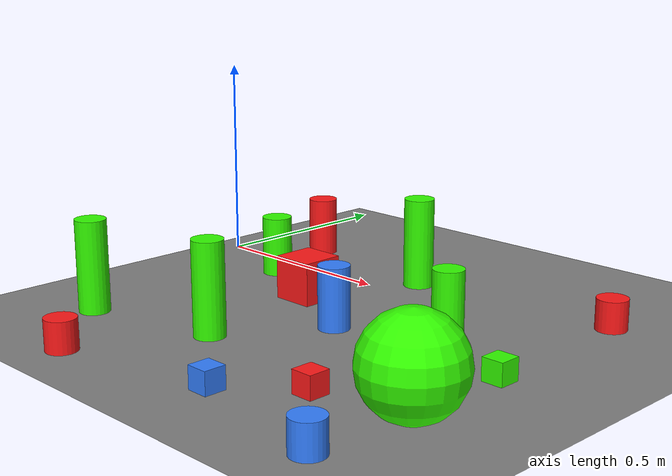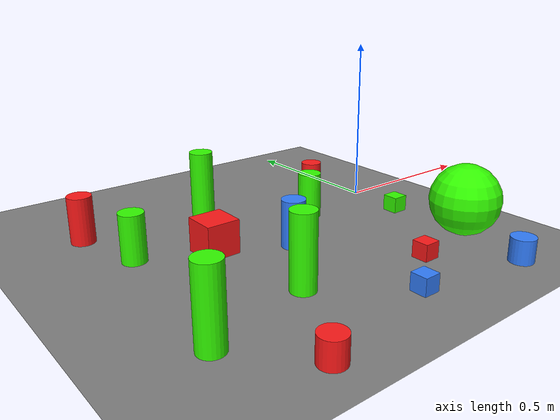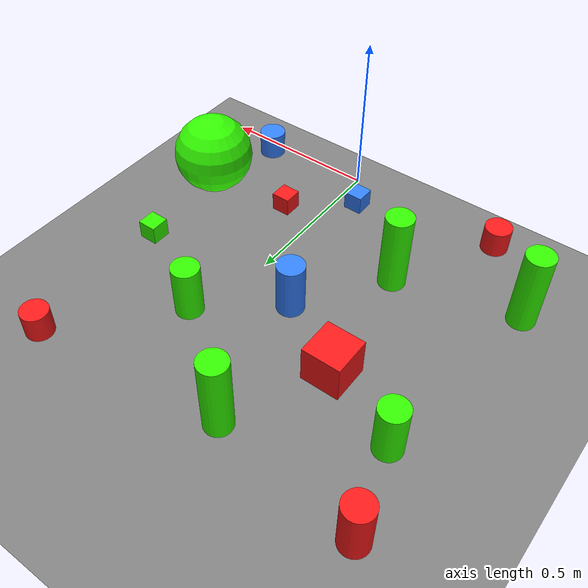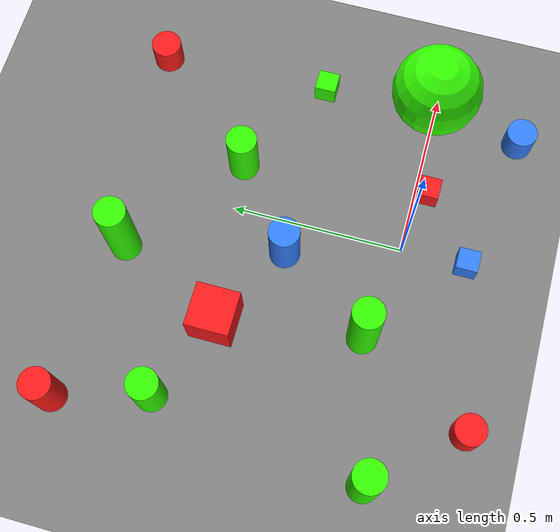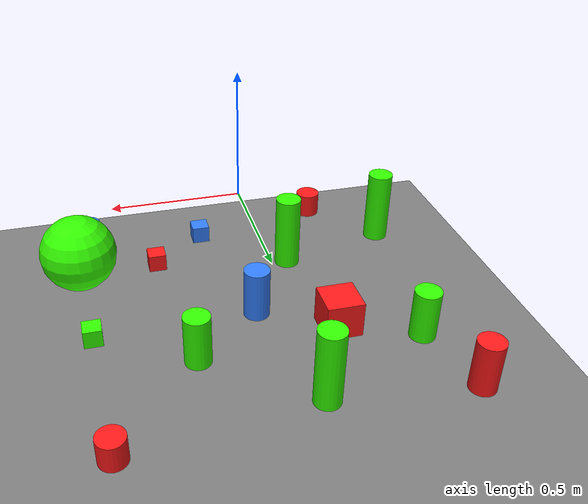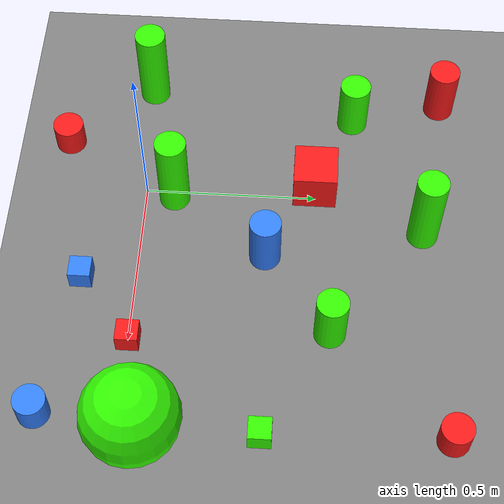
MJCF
<mujoco model="scene"><compiler angle="radian" coordinate="local" inertiafromgeom="true" /><option gravity="0 0 0" integrator="Euler" iterations="20" timestep="0.01" /><default><joint armature="0.04" damping="1" limited="true" /><geom conaffinity="0" condim="1" contype="0" density="300" friction=".8 .1 .1" margin="0.002" /></default><worldbody><light diffuse=".5 .5 .5" dir="0 0 -1" pos="0 0 3" /><geom conaffinity="1" contype="1" name="table" pos="0 0.5 -0.325" size="1 1 0.1" type="plane" /><body name="0" pos="-0.636192672092 -0.0647654930402 -0.175"><geom conaffinity="0" contype="1" density="0.00001" rgba="0.2 1 0 1" size="0.05 0.15 0.05" type="cylinder" /><joint axis="0 1 0" damping="0.5" name="obj0_slidey" pos="0 0 0" range="-10.3213 10.3" type="slide" /><joint axis="1 0 0" damping="0.5" name="obj0_slidex" pos="0 0 0" range="-10.3213 10.3" type="slide" /></body><body name="1" pos="0.124337202218 -0.221293561642 -0.289644660941"><geom conaffinity="0" contype="1" density="0.00001" rgba="0.2 0.5 1 1" size="0.0353553390593 0.0353553390593 0.0353553390593" type="box" /><joint axis="0 1 0" damping="0.5" name="obj1_slidey" pos="0 0 0" range="-10.3213 10.3" type="slide" /><joint axis="1 0 0" damping="0.5" name="obj1_slidex" pos="0 0 0" range="-10.3213 10.3" type="slide" /></body><body name="2" pos="0.64738698279 0.00559349150268 -0.175"><geom conaffinity="0" contype="1" density="0.00001" rgba="0.2 1 0 1" size="0.15 0.05 0.05" type="sphere" /><joint axis="0 1 0" damping="0.5" name="obj2_slidey" pos="0 0 0" range="-10.3213 10.3" type="slide" /><joint axis="1 0 0" damping="0.5" name="obj2_slidex" pos="0 0 0" range="-10.3213 10.3" type="slide" /></body><body name="3" pos="0.610913633608 0.9411065971 -0.275"><geom conaffinity="0" contype="1" density="0.00001" rgba="1 0.1 0.1 1" size="0.05 0.05 0.05" type="cylinder" /><joint axis="0 1 0" damping="0.5" name="obj3_slidey" pos="0 0 0" range="-10.3213 10.3" type="slide" /><joint axis="1 0 0" damping="0.5" name="obj3_slidex" pos="0 0 0" range="-10.3213 10.3" type="slide" /></body><body name="4" pos="-0.0965176736538 0.860955310028 -0.175"><geom conaffinity="0" contype="1" density="0.00001" rgba="0.2 1 0 1" size="0.05 0.15 0.05" type="cylinder" /><joint axis="0 1 0" damping="0.5" name="obj4_slidey" pos="0 0 0" range="-10.3213 10.3" type="slide" /><joint axis="1 0 0" damping="0.5" name="obj4_slidex" pos="0 0 0" range="-10.3213 10.3" type="slide" /></body><body name="5" pos="0.0140411866438 0.355215814688 -0.225"><geom conaffinity="0" contype="1" density="0.00001" rgba="0.2 0.5 1 1" size="0.05 0.1 0.05" type="cylinder" /><joint axis="0 1 0" damping="0.5" name="obj5_slidey" pos="0 0 0" range="-10.3213 10.3" type="slide" /><joint axis="1 0 0" damping="0.5" name="obj5_slidex" pos="0 0 0" range="-10.3213 10.3" type="slide" /></body><body name="6" pos="-0.624241498573 0.924917641986 -0.225"><geom conaffinity="0" contype="1" density="0.00001" rgba="1 0.1 0.1 1" size="0.05 0.1 0.05" type="cylinder" /><joint axis="0 1 0" damping="0.5" name="obj6_slidey" pos="0 0 0" range="-10.3213 10.3" type="slide" /><joint axis="1 0 0" damping="0.5" name="obj6_slidex" pos="0 0 0" range="-10.3213 10.3" type="slide" /></body><body name="7" pos="-0.404550991794 -0.330453629632 -0.275"><geom conaffinity="0" contype="1" density="0.00001" rgba="1 0.1 0.1 1" size="0.05 0.05 0.05" type="cylinder" /><joint axis="0 1 0" damping="0.5" name="obj7_slidey" pos="0 0 0" range="-10.3213 10.3" type="slide" /><joint axis="1 0 0" damping="0.5" name="obj7_slidex" pos="0 0 0" range="-10.3213 10.3" type="slide" /></body><body name="8" pos="0.596410512837 -0.300456028699 -0.275"><geom conaffinity="0" contype="1" density="0.00001" rgba="0.2 0.5 1 1" size="0.05 0.05 0.05" type="cylinder" /><joint axis="0 1 0" damping="0.5" name="obj8_slidey" pos="0 0 0" range="-10.3213 10.3" type="slide" /><joint axis="1 0 0" damping="0.5" name="obj8_slidex" pos="0 0 0" range="-10.3213 10.3" type="slide" /></body><body name="9" pos="0.631018110736 0.373585860458 -0.289644660941"><geom conaffinity="0" contype="1" density="0.00001" rgba="0.2 1 0 1" size="0.0353553390593 0.0353553390593 0.0353553390593" type="box" /><joint axis="0 1 0" damping="0.5" name="obj9_slidey" pos="0 0 0" range="-10.3213 10.3" type="slide" /><joint axis="1 0 0" damping="0.5" name="obj9_slidex" pos="0 0 0" range="-10.3213 10.3" type="slide" /></body><body name="10" pos="0.338343464175 -0.0478574907436 -0.289644660941"><geom conaffinity="0" contype="1" density="0.00001" rgba="1 0.1 0.1 1" size="0.0353553390593 0.0353553390593 0.0353553390593" type="box" /><joint axis="0 1 0" damping="0.5" name="obj10_slidey" pos="0 0 0" range="-10.3213 10.3" type="slide" /><joint axis="1 0 0" damping="0.5" name="obj10_slidex" pos="0 0 0" range="-10.3213 10.3" type="slide" /></body><body name="11" pos="-0.543514191641 0.626360074703 -0.225"><geom conaffinity="0" contype="1" density="0.00001" rgba="0.2 1 0 1" size="0.05 0.1 0.05" type="cylinder" /><joint axis="0 1 0" damping="0.5" name="obj11_slidey" pos="0 0 0" range="-10.3213 10.3" type="slide" /><joint axis="1 0 0" damping="0.5" name="obj11_slidex" pos="0 0 0" range="-10.3213 10.3" type="slide" /></body><body name="12" pos="0.280191509075 0.569902443335 -0.225"><geom conaffinity="0" contype="1" density="0.00001" rgba="0.2 1 0 1" size="0.05 0.1 0.05" type="cylinder" /><joint axis="0 1 0" damping="0.5" name="obj12_slidey" pos="0 0 0" range="-10.3213 10.3" type="slide" /><joint axis="1 0 0" damping="0.5" name="obj12_slidex" pos="0 0 0" range="-10.3213 10.3" type="slide" /></body><body name="13" pos="-0.196427554976 0.0449648612558 -0.175"><geom conaffinity="0" contype="1" density="0.00001" rgba="0.2 1 0 1" size="0.05 0.15 0.05" type="cylinder" /><joint axis="0 1 0" damping="0.5" name="obj13_slidey" pos="0 0 0" range="-10.3213 10.3" type="slide" /><joint axis="1 0 0" damping="0.5" name="obj13_slidex" pos="0 0 0" range="-10.3213 10.3" type="slide" /></body><body name="14" pos="-0.261009412222 0.505822234956 -0.254289321881"><geom conaffinity="0" contype="1" density="0.00001" rgba="1 0.1 0.1 1" size="0.0707106781187 0.0707106781187 0.0707106781187" type="box" /><joint axis="0 1 0" damping="0.5" name="obj14_slidey" pos="0 0 0" range="-10.3213 10.3" type="slide" /><joint axis="1 0 0" damping="0.5" name="obj14_slidex" pos="0 0 0" range="-10.3213 10.3" type="slide" /></body></worldbody></mujoco>
